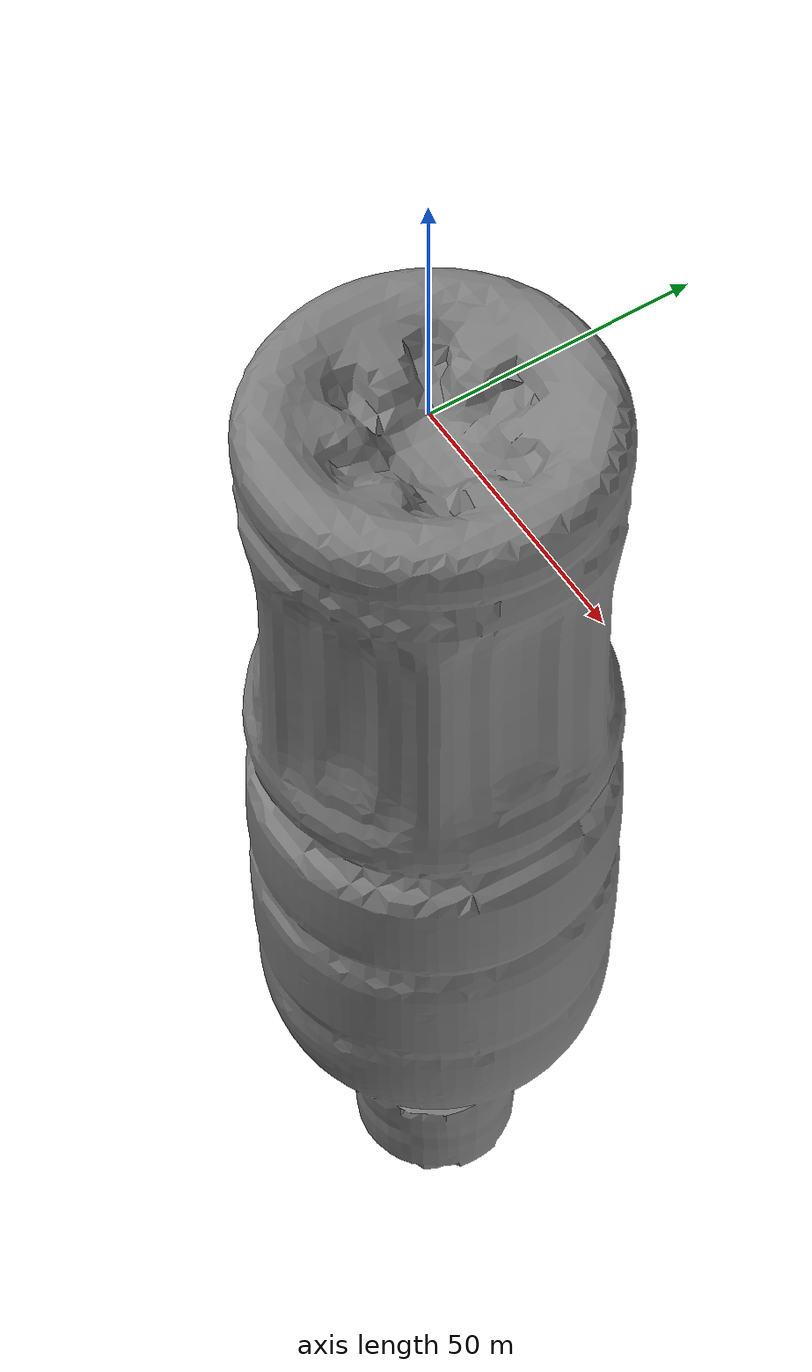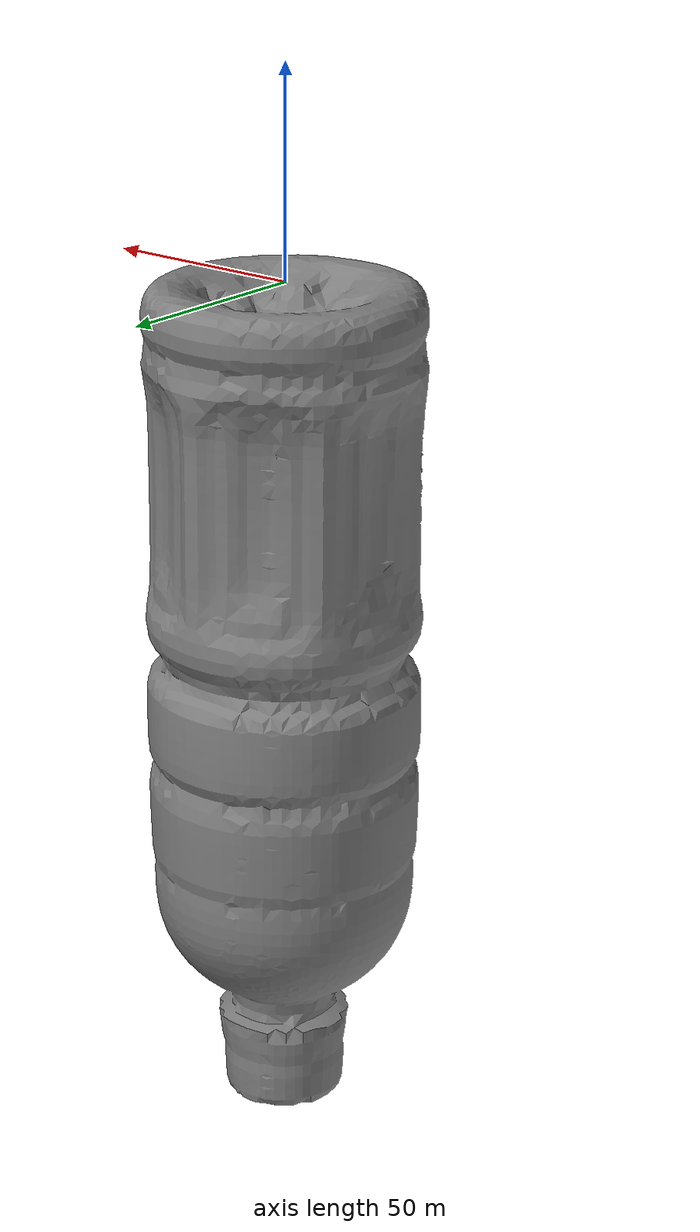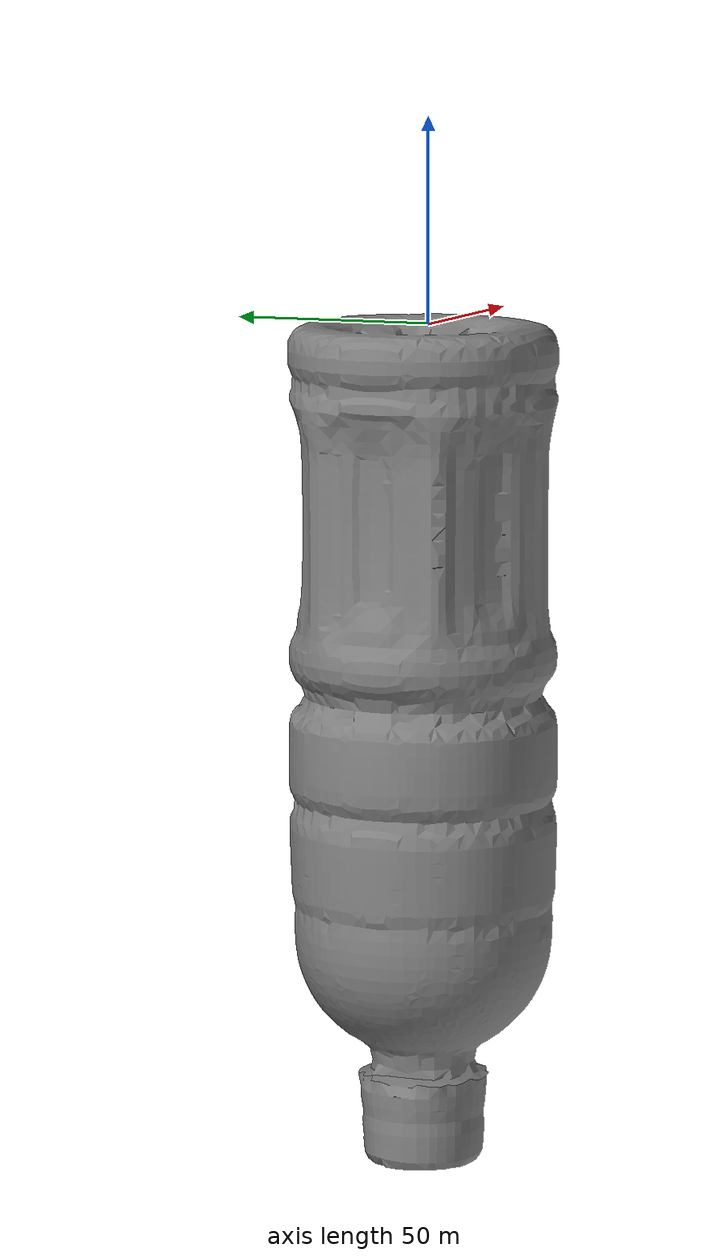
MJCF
<mujoco model="electrolyteWater_simple">
  <default>
    <default class="visual">
      <geom group="2" type="mesh" contype="0" conaffinity="0"/>
    </default>
    <default class="collision">
      <geom group="3" type="mesh"/>
    </default>
  </default>
  <asset>
    <mesh file="electrolyteWater_simple.obj"/>
    <mesh file="electrolyteWater_simple_collision_0.obj"/>
    <mesh file="electrolyteWater_simple_collision_1.obj"/>
    <mesh file="electrolyteWater_simple_collision_2.obj"/>
    <mesh file="electrolyteWater_simple_collision_3.obj"/>
    <mesh file="electrolyteWater_simple_collision_4.obj"/>
    <mesh file="electrolyteWater_simple_collision_5.obj"/>
    <mesh file="electrolyteWater_simple_collision_6.obj"/>
    <mesh file="electrolyteWater_simple_collision_7.obj"/>
    <mesh file="electrolyteWater_simple_collision_8.obj"/>
    <mesh file="electrolyteWater_simple_collision_9.obj"/>
    <mesh file="electrolyteWater_simple_collision_10.obj"/>
    <mesh file="electrolyteWater_simple_collision_11.obj"/>
    <mesh file="electrolyteWater_simple_collision_12.obj"/>
    <mesh file="electrolyteWater_simple_collision_13.obj"/>
    <mesh file="electrolyteWater_simple_collision_14.obj"/>
    <mesh file="electrolyteWater_simple_collision_15.obj"/>
    <mesh file="electrolyteWater_simple_collision_16.obj"/>
    <mesh file="electrolyteWater_simple_collision_17.obj"/>
    <mesh file="electrolyteWater_simple_collision_18.obj"/>
    <mesh file="electrolyteWater_simple_collision_19.obj"/>
    <mesh file="electrolyteWater_simple_collision_20.obj"/>
    <mesh file="electrolyteWater_simple_collision_21.obj"/>
    <mesh file="electrolyteWater_simple_collision_22.obj"/>
    <mesh file="electrolyteWater_simple_collision_23.obj"/>
    <mesh file="electrolyteWater_simple_collision_24.obj"/>
    <mesh file="electrolyteWater_simple_collision_25.obj"/>
    <mesh file="electrolyteWater_simple_collision_26.obj"/>
    <mesh file="electrolyteWater_simple_collision_27.obj"/>
    <mesh file="electrolyteWater_simple_collision_28.obj"/>
    <mesh file="electrolyteWater_simple_collision_29.obj"/>
    <mesh file="electrolyteWater_simple_collision_30.obj"/>
    <mesh file="electrolyteWater_simple_collision_31.obj"/>
    <mesh file="electrolyteWater_simple_collision_32.obj"/>
    <mesh file="electrolyteWater_simple_collision_33.obj"/>
    <mesh file="electrolyteWater_simple_collision_34.obj"/>
    <mesh file="electrolyteWater_simple_collision_35.obj"/>
    <mesh file="electrolyteWater_simple_collision_36.obj"/>
    <mesh file="electrolyteWater_simple_collision_37.obj"/>
    <mesh file="electrolyteWater_simple_collision_38.obj"/>
    <mesh file="electrolyteWater_simple_collision_39.obj"/>
    <mesh file="electrolyteWater_simple_collision_40.obj"/>
    <mesh file="electrolyteWater_simple_collision_41.obj"/>
    <mesh file="electrolyteWater_simple_collision_42.obj"/>
    <mesh file="electrolyteWater_simple_collision_43.obj"/>
    <mesh file="electrolyteWater_simple_collision_44.obj"/>
    <mesh file="electrolyteWater_simple_collision_45.obj"/>
    <mesh file="electrolyteWater_simple_collision_46.obj"/>
    <mesh file="electrolyteWater_simple_collision_47.obj"/>
    <mesh file="electrolyteWater_simple_collision_48.obj"/>
    <mesh file="electrolyteWater_simple_collision_49.obj"/>
    <mesh file="electrolyteWater_simple_collision_50.obj"/>
    <mesh file="electrolyteWater_simple_collision_51.obj"/>
    <mesh file="electrolyteWater_simple_collision_52.obj"/>
    <mesh file="electrolyteWater_simple_collision_53.obj"/>
    <mesh file="electrolyteWater_simple_collision_54.obj"/>
    <mesh file="electrolyteWater_simple_collision_55.obj"/>
    <mesh file="electrolyteWater_simple_collision_56.obj"/>
    <mesh file="electrolyteWater_simple_collision_57.obj"/>
    <mesh file="electrolyteWater_simple_collision_58.obj"/>
    <mesh file="electrolyteWater_simple_collision_59.obj"/>
    <mesh file="electrolyteWater_simple_collision_60.obj"/>
    <mesh file="electrolyteWater_simple_collision_61.obj"/>
    <mesh file="electrolyteWater_simple_collision_62.obj"/>
    <mesh file="electrolyteWater_simple_collision_63.obj"/>
    <mesh file="electrolyteWater_simple_collision_64.obj"/>
    <mesh file="electrolyteWater_simple_collision_65.obj"/>
    <mesh file="electrolyteWater_simple_collision_66.obj"/>
    <mesh file="electrolyteWater_simple_collision_67.obj"/>
    <mesh file="electrolyteWater_simple_collision_68.obj"/>
    <mesh file="electrolyteWater_simple_collision_69.obj"/>
    <mesh file="electrolyteWater_simple_collision_70.obj"/>
    <mesh file="electrolyteWater_simple_collision_71.obj"/>
    <mesh file="electrolyteWater_simple_collision_72.obj"/>
    <mesh file="electrolyteWater_simple_collision_73.obj"/>
    <mesh file="electrolyteWater_simple_collision_74.obj"/>
    <mesh file="electrolyteWater_simple_collision_75.obj"/>
    <mesh file="electrolyteWater_simple_collision_76.obj"/>
    <mesh file="electrolyteWater_simple_collision_77.obj"/>
    <mesh file="electrolyteWater_simple_collision_78.obj"/>
    <mesh file="electrolyteWater_simple_collision_79.obj"/>
    <mesh file="electrolyteWater_simple_collision_80.obj"/>
    <mesh file="electrolyteWater_simple_collision_81.obj"/>
    <mesh file="electrolyteWater_simple_collision_82.obj"/>
    <mesh file="electrolyteWater_simple_collision_83.obj"/>
    <mesh file="electrolyteWater_simple_collision_84.obj"/>
    <mesh file="electrolyteWater_simple_collision_85.obj"/>
    <mesh file="electrolyteWater_simple_collision_86.obj"/>
    <mesh file="electrolyteWater_simple_collision_87.obj"/>
    <mesh file="electrolyteWater_simple_collision_88.obj"/>
    <mesh file="electrolyteWater_simple_collision_89.obj"/>
    <mesh file="electrolyteWater_simple_collision_90.obj"/>
    <mesh file="electrolyteWater_simple_collision_91.obj"/>
    <mesh file="electrolyteWater_simple_collision_92.obj"/>
    <mesh file="electrolyteWater_simple_collision_93.obj"/>
    <mesh file="electrolyteWater_simple_collision_94.obj"/>
    <mesh file="electrolyteWater_simple_collision_95.obj"/>
    <mesh file="electrolyteWater_simple_collision_96.obj"/>
    <mesh file="electrolyteWater_simple_collision_97.obj"/>
    <mesh file="electrolyteWater_simple_collision_98.obj"/>
    <mesh file="electrolyteWater_simple_collision_99.obj"/>
    <mesh file="electrolyteWater_simple_collision_100.obj"/>
    <mesh file="electrolyteWater_simple_collision_101.obj"/>
    <mesh file="electrolyteWater_simple_collision_102.obj"/>
    <mesh file="electrolyteWater_simple_collision_103.obj"/>
    <mesh file="electrolyteWater_simple_collision_104.obj"/>
    <mesh file="electrolyteWater_simple_collision_105.obj"/>
    <mesh file="electrolyteWater_simple_collision_106.obj"/>
    <mesh file="electrolyteWater_simple_collision_107.obj"/>
    <mesh file="electrolyteWater_simple_collision_108.obj"/>
    <mesh file="electrolyteWater_simple_collision_109.obj"/>
    <mesh file="electrolyteWater_simple_collision_110.obj"/>
    <mesh file="electrolyteWater_simple_collision_111.obj"/>
    <mesh file="electrolyteWater_simple_collision_112.obj"/>
    <mesh file="electrolyteWater_simple_collision_113.obj"/>
    <mesh file="electrolyteWater_simple_collision_114.obj"/>
    <mesh file="electrolyteWater_simple_collision_115.obj"/>
    <mesh file="electrolyteWater_simple_collision_116.obj"/>
    <mesh file="electrolyteWater_simple_collision_117.obj"/>
    <mesh file="electrolyteWater_simple_collision_118.obj"/>
    <mesh file="electrolyteWater_simple_collision_119.obj"/>
    <mesh file="electrolyteWater_simple_collision_120.obj"/>
    <mesh file="electrolyteWater_simple_collision_121.obj"/>
    <mesh file="electrolyteWater_simple_collision_122.obj"/>
    <mesh file="electrolyteWater_simple_collision_123.obj"/>
    <mesh file="electrolyteWater_simple_collision_124.obj"/>
    <mesh file="electrolyteWater_simple_collision_125.obj"/>
    <mesh file="electrolyteWater_simple_collision_126.obj"/>
    <mesh file="electrolyteWater_simple_collision_127.obj"/>
    <mesh file="electrolyteWater_simple_collision_128.obj"/>
    <mesh file="electrolyteWater_simple_collision_129.obj"/>
    <mesh file="electrolyteWater_simple_collision_130.obj"/>
    <mesh file="electrolyteWater_simple_collision_131.obj"/>
    <mesh file="electrolyteWater_simple_collision_132.obj"/>
    <mesh file="electrolyteWater_simple_collision_133.obj"/>
    <mesh file="electrolyteWater_simple_collision_134.obj"/>
    <mesh file="electrolyteWater_simple_collision_135.obj"/>
    <mesh file="electrolyteWater_simple_collision_136.obj"/>
    <mesh file="electrolyteWater_simple_collision_137.obj"/>
    <mesh file="electrolyteWater_simple_collision_138.obj"/>
    <mesh file="electrolyteWater_simple_collision_139.obj"/>
    <mesh file="electrolyteWater_simple_collision_140.obj"/>
    <mesh file="electrolyteWater_simple_collision_141.obj"/>
    <mesh file="electrolyteWater_simple_collision_142.obj"/>
    <mesh file="electrolyteWater_simple_collision_143.obj"/>
    <mesh file="electrolyteWater_simple_collision_144.obj"/>
    <mesh file="electrolyteWater_simple_collision_145.obj"/>
    <mesh file="electrolyteWater_simple_collision_146.obj"/>
    <mesh file="electrolyteWater_simple_collision_147.obj"/>
    <mesh file="electrolyteWater_simple_collision_148.obj"/>
    <mesh file="electrolyteWater_simple_collision_149.obj"/>
    <mesh file="electrolyteWater_simple_collision_150.obj"/>
    <mesh file="electrolyteWater_simple_collision_151.obj"/>
    <mesh file="electrolyteWater_simple_collision_152.obj"/>
    <mesh file="electrolyteWater_simple_collision_153.obj"/>
    <mesh file="electrolyteWater_simple_collision_154.obj"/>
    <mesh file="electrolyteWater_simple_collision_155.obj"/>
    <mesh file="electrolyteWater_simple_collision_156.obj"/>
    <mesh file="electrolyteWater_simple_collision_157.obj"/>
    <mesh file="electrolyteWater_simple_collision_158.obj"/>
    <mesh file="electrolyteWater_simple_collision_159.obj"/>
    <mesh file="electrolyteWater_simple_collision_160.obj"/>
    <mesh file="electrolyteWater_simple_collision_161.obj"/>
    <mesh file="electrolyteWater_simple_collision_162.obj"/>
    <mesh file="electrolyteWater_simple_collision_163.obj"/>
    <mesh file="electrolyteWater_simple_collision_164.obj"/>
    <mesh file="electrolyteWater_simple_collision_165.obj"/>
    <mesh file="electrolyteWater_simple_collision_166.obj"/>
    <mesh file="electrolyteWater_simple_collision_167.obj"/>
    <mesh file="electrolyteWater_simple_collision_168.obj"/>
    <mesh file="electrolyteWater_simple_collision_169.obj"/>
    <mesh file="electrolyteWater_simple_collision_170.obj"/>
    <mesh file="electrolyteWater_simple_collision_171.obj"/>
    <mesh file="electrolyteWater_simple_collision_172.obj"/>
    <mesh file="electrolyteWater_simple_collision_173.obj"/>
    <mesh file="electrolyteWater_simple_collision_174.obj"/>
    <mesh file="electrolyteWater_simple_collision_175.obj"/>
    <mesh file="electrolyteWater_simple_collision_176.obj"/>
    <mesh file="electrolyteWater_simple_collision_177.obj"/>
    <mesh file="electrolyteWater_simple_collision_178.obj"/>
    <mesh file="electrolyteWater_simple_collision_179.obj"/>
    <mesh file="electrolyteWater_simple_collision_180.obj"/>
    <mesh file="electrolyteWater_simple_collision_181.obj"/>
    <mesh file="electrolyteWater_simple_collision_182.obj"/>
    <mesh file="electrolyteWater_simple_collision_183.obj"/>
    <mesh file="electrolyteWater_simple_collision_184.obj"/>
    <mesh file="electrolyteWater_simple_collision_185.obj"/>
    <mesh file="electrolyteWater_simple_collision_186.obj"/>
    <mesh file="electrolyteWater_simple_collision_187.obj"/>
    <mesh file="electrolyteWater_simple_collision_188.obj"/>
    <mesh file="electrolyteWater_simple_collision_189.obj"/>
    <mesh file="electrolyteWater_simple_collision_190.obj"/>
    <mesh file="electrolyteWater_simple_collision_191.obj"/>
    <mesh file="electrolyteWater_simple_collision_192.obj"/>
    <mesh file="electrolyteWater_simple_collision_193.obj"/>
    <mesh file="electrolyteWater_simple_collision_194.obj"/>
    <mesh file="electrolyteWater_simple_collision_195.obj"/>
    <mesh file="electrolyteWater_simple_collision_196.obj"/>
    <mesh file="electrolyteWater_simple_collision_197.obj"/>
    <mesh file="electrolyteWater_simple_collision_198.obj"/>
    <mesh file="electrolyteWater_simple_collision_199.obj"/>
  </asset>
  <worldbody>
    <body name="electrolyteWater_simple">
      <geom mesh="electrolyteWater_simple" class="visual"/>
      <geom mesh="electrolyteWater_simple_collision_0" rgba="0.5461134181409263 0.005094437537162766 0.6962053087676381 1" class="collision"/>
      <geom mesh="electrolyteWater_simple_collision_1" rgba="0.9111514688207846 0.2940151662398499 0.1210464158542589 1" class="collision"/>
      <geom mesh="electrolyteWater_simple_collision_2" rgba="0.07210777135686885 0.5460440313327026 0.4162402253605916 1" class="collision"/>
      <geom mesh="electrolyteWater_simple_collision_3" rgba="0.16350408486450496 0.5045316754894293 0.28352074494155044 1" class="collision"/>
      <geom mesh="electrolyteWater_simple_collision_4" rgba="0.3011938892332332 0.0868714756313147 0.4154568814870302 1" class="collision"/>
      <geom mesh="electrolyteWater_simple_collision_5" rgba="0.680146847261629 0.47968945693409426 0.11280761473750545 1" class="collision"/>
      <geom mesh="electrolyteWater_simple_collision_6" rgba="0.06391725280414584 0.6338263002872896 0.35078150651937645 1" class="collision"/>
      <geom mesh="electrolyteWater_simple_collision_7" rgba="0.1386553293290962 0.38602093871845355 0.9592196665215285 1" class="collision"/>
      <geom mesh="electrolyteWater_simple_collision_8" rgba="0.8749987892075933 0.8547895898270119 0.4147862401567012 1" class="collision"/>
      <geom mesh="electrolyteWater_simple_collision_9" rgba="0.07435351834970383 0.7788572205966567 0.7035073139100909 1" class="collision"/>
      <geom mesh="electrolyteWater_simple_collision_10" rgba="0.6465527309260524 0.8645650496576339 0.398469768061147 1" class="collision"/>
      <geom mesh="electrolyteWater_simple_collision_11" rgba="0.024319844450988226 0.6246532188088362 0.7008697722424119 1" class="collision"/>
      <geom mesh="electrolyteWater_simple_collision_12" rgba="0.8177556402759065 0.45730145665300104 0.6713154621063048 1" class="collision"/>
      <geom mesh="electrolyteWater_simple_collision_13" rgba="0.6606361714322072 0.7517470659068454 0.3047909861273006 1" class="collision"/>
      <geom mesh="electrolyteWater_simple_collision_14" rgba="0.5236871885347858 0.9804864284280536 0.6388596888632413 1" class="collision"/>
      <geom mesh="electrolyteWater_simple_collision_15" rgba="0.2901042942278502 0.5328246952262675 0.8289562334727446 1" class="collision"/>
      <geom mesh="electrolyteWater_simple_collision_16" rgba="0.44717444148706953 0.6359884168109586 0.2842612208122237 1" class="collision"/>
      <geom mesh="electrolyteWater_simple_collision_17" rgba="0.6622357946298186 0.45010097275554695 0.14728096450130346 1" class="collision"/>
      <geom mesh="electrolyteWater_simple_collision_18" rgba="0.37208371022643005 0.32908624520438956 0.8960624910959186 1" class="collision"/>
      <geom mesh="electrolyteWater_simple_collision_19" rgba="0.60701827294774 0.7252555186850251 0.15420402258548072 1" class="collision"/>
      <geom mesh="electrolyteWater_simple_collision_20" rgba="0.4776168723734032 0.8915835641680866 0.4863235649343609 1" class="collision"/>
      <geom mesh="electrolyteWater_simple_collision_21" rgba="0.678750253210317 0.6012341300387603 0.23397261566377836 1" class="collision"/>
      <geom mesh="electrolyteWater_simple_collision_22" rgba="0.7932623019325103 0.8301799602009143 0.07172772421928997 1" class="collision"/>
      <geom mesh="electrolyteWater_simple_collision_23" rgba="0.2089381685053595 0.40721607341462507 0.5902437021263609 1" class="collision"/>
      <geom mesh="electrolyteWater_simple_collision_24" rgba="0.22612604685369964 0.20685920340585673 0.40197064085626855 1" class="collision"/>
      <geom mesh="electrolyteWater_simple_collision_25" rgba="0.766310528945579 0.6300534027539972 0.6866909594145668 1" class="collision"/>
      <geom mesh="electrolyteWater_simple_collision_26" rgba="0.3111446246318087 0.6764011557389978 0.9790475255571025 1" class="collision"/>
      <geom mesh="electrolyteWater_simple_collision_27" rgba="0.8296825997236963 0.9350722414007405 0.1363973455259676 1" class="collision"/>
      <geom mesh="electrolyteWater_simple_collision_28" rgba="0.08844554880434674 0.9200218715740434 0.8854217806920577 1" class="collision"/>
      <geom mesh="electrolyteWater_simple_collision_29" rgba="0.12006447330258518 0.964705738288836 0.07822745950169496 1" class="collision"/>
      <geom mesh="electrolyteWater_simple_collision_30" rgba="0.5645096761293819 0.2921694776870366 0.7049083222821131 1" class="collision"/>
      <geom mesh="electrolyteWater_simple_collision_31" rgba="0.6808666463033857 0.9242226935945452 0.9846665013116768 1" class="collision"/>
      <geom mesh="electrolyteWater_simple_collision_32" rgba="0.4960658230185059 0.06739224929253396 0.5567665283153541 1" class="collision"/>
      <geom mesh="electrolyteWater_simple_collision_33" rgba="0.6769822214268613 0.5650693018184499 0.6920624080636695 1" class="collision"/>
      <geom mesh="electrolyteWater_simple_collision_34" rgba="0.7934485992343125 0.12524603926251066 0.43308205574864744 1" class="collision"/>
      <geom mesh="electrolyteWater_simple_collision_35" rgba="0.37785769982131967 0.12917523490860816 0.32174227312596815 1" class="collision"/>
      <geom mesh="electrolyteWater_simple_collision_36" rgba="0.6040213995767564 0.47982109764780667 0.2885745189378043 1" class="collision"/>
      <geom mesh="electrolyteWater_simple_collision_37" rgba="0.22822255411182113 0.1193134057832459 0.178990102900079 1" class="collision"/>
      <geom mesh="electrolyteWater_simple_collision_38" rgba="0.8728053361791861 0.8968325687049407 0.16202436937649067 1" class="collision"/>
      <geom mesh="electrolyteWater_simple_collision_39" rgba="0.13384145587023644 0.7368064890428575 0.3005958910468022 1" class="collision"/>
      <geom mesh="electrolyteWater_simple_collision_40" rgba="0.2219842302930931 0.6683617571871898 0.253338516730059 1" class="collision"/>
      <geom mesh="electrolyteWater_simple_collision_41" rgba="0.24114857418709557 0.0823851627145672 0.41331682723819063 1" class="collision"/>
      <geom mesh="electrolyteWater_simple_collision_42" rgba="0.041523718531276343 0.5638059140020374 0.27294570555847797 1" class="collision"/>
      <geom mesh="electrolyteWater_simple_collision_43" rgba="0.4686338063319542 0.14807073503999735 0.0947768055710444 1" class="collision"/>
      <geom mesh="electrolyteWater_simple_collision_44" rgba="0.9257081394841602 0.8037336966214604 0.26068639019757434 1" class="collision"/>
      <geom mesh="electrolyteWater_simple_collision_45" rgba="0.8245105745813964 0.7304168996189996 0.5316821262013993 1" class="collision"/>
      <geom mesh="electrolyteWater_simple_collision_46" rgba="0.020331860133046775 0.3391621736665308 0.519316065942908 1" class="collision"/>
      <geom mesh="electrolyteWater_simple_collision_47" rgba="0.9064723533952191 0.7174797684723624 0.3221448621820947 1" class="collision"/>
      <geom mesh="electrolyteWater_simple_collision_48" rgba="0.23291228927795116 0.9302563771221664 0.5587607254451337 1" class="collision"/>
      <geom mesh="electrolyteWater_simple_collision_49" rgba="0.832614190866098 0.39801854473301923 0.1778639945715641 1" class="collision"/>
      <geom mesh="electrolyteWater_simple_collision_50" rgba="0.29158291397680314 0.4323864498716913 0.555388181577699 1" class="collision"/>
      <geom mesh="electrolyteWater_simple_collision_51" rgba="0.045999495327829876 0.5218411593669757 0.49511212508272406 1" class="collision"/>
      <geom mesh="electrolyteWater_simple_collision_52" rgba="0.5568441638388575 0.4891129712786707 0.35103037413350324 1" class="collision"/>
      <geom mesh="electrolyteWater_simple_collision_53" rgba="0.5610607599179563 0.6767347352729218 0.1918806958963457 1" class="collision"/>
      <geom mesh="electrolyteWater_simple_collision_54" rgba="0.6615291361951035 0.8122282537676903 0.36452439359469846 1" class="collision"/>
      <geom mesh="electrolyteWater_simple_collision_55" rgba="0.2461571469098196 0.24114392550206654 0.6963532838094267 1" class="collision"/>
      <geom mesh="electrolyteWater_simple_collision_56" rgba="0.21542734347647963 0.27752291062183077 0.04866179915644553 1" class="collision"/>
      <geom mesh="electrolyteWater_simple_collision_57" rgba="0.9581529589744947 0.6138429300501989 0.7333423662268209 1" class="collision"/>
      <geom mesh="electrolyteWater_simple_collision_58" rgba="0.8092909314257581 0.007624212036051681 0.5239751624176283 1" class="collision"/>
      <geom mesh="electrolyteWater_simple_collision_59" rgba="0.8508270260780035 0.2744721182657427 0.9804872888149244 1" class="collision"/>
      <geom mesh="electrolyteWater_simple_collision_60" rgba="0.12053828773199582 0.20659537711120257 0.8255901958548278 1" class="collision"/>
      <geom mesh="electrolyteWater_simple_collision_61" rgba="0.04522004616974662 0.8334316598244919 0.08652810891381257 1" class="collision"/>
      <geom mesh="electrolyteWater_simple_collision_62" rgba="0.609129476562033 0.23277195928034444 0.01191173178871463 1" class="collision"/>
      <geom mesh="electrolyteWater_simple_collision_63" rgba="0.3240088063321379 0.1750598845405359 0.6230177256253059 1" class="collision"/>
      <geom mesh="electrolyteWater_simple_collision_64" rgba="0.6771147496986717 0.5963698350863025 0.6455895716373725 1" class="collision"/>
      <geom mesh="electrolyteWater_simple_collision_65" rgba="0.4823886626084607 0.7453110056802628 0.39221546841522215 1" class="collision"/>
      <geom mesh="electrolyteWater_simple_collision_66" rgba="0.9299968925204247 0.6971213796997633 0.40385641162375696 1" class="collision"/>
      <geom mesh="electrolyteWater_simple_collision_67" rgba="0.4990827129416352 0.7047015428198276 0.19703558955400668 1" class="collision"/>
      <geom mesh="electrolyteWater_simple_collision_68" rgba="0.9726455876020776 0.10646147541304074 0.6333946827875208 1" class="collision"/>
      <geom mesh="electrolyteWater_simple_collision_69" rgba="0.8524188285015644 0.834599349591473 0.9945912787622724 1" class="collision"/>
      <geom mesh="electrolyteWater_simple_collision_70" rgba="0.8270327643056095 0.4845644800232223 0.5404180481315584 1" class="collision"/>
      <geom mesh="electrolyteWater_simple_collision_71" rgba="0.021324977852694715 0.8315408775815687 0.3331640994094677 1" class="collision"/>
      <geom mesh="electrolyteWater_simple_collision_72" rgba="0.8990996786282432 0.13690731986060833 0.5996549590209557 1" class="collision"/>
      <geom mesh="electrolyteWater_simple_collision_73" rgba="0.4782651558729979 0.44280798473524596 0.09697689372401674 1" class="collision"/>
      <geom mesh="electrolyteWater_simple_collision_74" rgba="0.20425895552100715 0.14997511019482812 0.7263244198606296 1" class="collision"/>
      <geom mesh="electrolyteWater_simple_collision_75" rgba="0.04273481023269432 0.6536520158374169 0.14026883261631562 1" class="collision"/>
      <geom mesh="electrolyteWater_simple_collision_76" rgba="0.035657596789884116 0.22708379362897013 0.34531778026302007 1" class="collision"/>
      <geom mesh="electrolyteWater_simple_collision_77" rgba="0.13284854009136338 0.9563978644603734 0.5532617636918621 1" class="collision"/>
      <geom mesh="electrolyteWater_simple_collision_78" rgba="0.2424442655014547 0.41721596120550974 0.42308558626339743 1" class="collision"/>
      <geom mesh="electrolyteWater_simple_collision_79" rgba="0.04636477696054864 0.03424059018406378 0.893549543058705 1" class="collision"/>
      <geom mesh="electrolyteWater_simple_collision_80" rgba="0.5894713207686403 0.19013277815370677 0.8865813811713337 1" class="collision"/>
      <geom mesh="electrolyteWater_simple_collision_81" rgba="0.49174769602978363 0.9078323879877264 0.692443721088268 1" class="collision"/>
      <geom mesh="electrolyteWater_simple_collision_82" rgba="0.49055133255611527 0.9765958941404782 0.8039977164119548 1" class="collision"/>
      <geom mesh="electrolyteWater_simple_collision_83" rgba="0.30103165733062354 0.569768199265921 0.7579085455947533 1" class="collision"/>
      <geom mesh="electrolyteWater_simple_collision_84" rgba="0.49333780594764065 0.04134129377975726 0.6249618032262251 1" class="collision"/>
      <geom mesh="electrolyteWater_simple_collision_85" rgba="0.32891745736925804 0.6899670862432561 0.5395572346034285 1" class="collision"/>
      <geom mesh="electrolyteWater_simple_collision_86" rgba="0.6665202863878326 0.4689754721781284 0.28905405219217994 1" class="collision"/>
      <geom mesh="electrolyteWater_simple_collision_87" rgba="0.287698899921462 0.8570893815806173 0.38263404730900563 1" class="collision"/>
      <geom mesh="electrolyteWater_simple_collision_88" rgba="0.7089256193435217 0.2398878390095931 0.10152548502301761 1" class="collision"/>
      <geom mesh="electrolyteWater_simple_collision_89" rgba="0.57331711726355 0.6459965434802268 0.26227929192671795 1" class="collision"/>
      <geom mesh="electrolyteWater_simple_collision_90" rgba="0.6864729992281686 0.2626582611936892 0.537658873833916 1" class="collision"/>
      <geom mesh="electrolyteWater_simple_collision_91" rgba="0.6386559189632363 0.7294583509180408 0.20337118597155102 1" class="collision"/>
      <geom mesh="electrolyteWater_simple_collision_92" rgba="0.6082748959524582 0.6008150902078825 0.8087671932843996 1" class="collision"/>
      <geom mesh="electrolyteWater_simple_collision_93" rgba="0.9162863524288477 0.5812487198096499 0.8488855282877992 1" class="collision"/>
      <geom mesh="electrolyteWater_simple_collision_94" rgba="0.4352547670327179 0.7618078974835112 0.9789714151314352 1" class="collision"/>
      <geom mesh="electrolyteWater_simple_collision_95" rgba="0.0819714276976733 0.8586274533967212 0.8428198460211912 1" class="collision"/>
      <geom mesh="electrolyteWater_simple_collision_96" rgba="0.32708367368196944 0.4592703659561551 0.6105260448255061 1" class="collision"/>
      <geom mesh="electrolyteWater_simple_collision_97" rgba="0.11246567206693081 0.391471516737671 0.13855361712318348 1" class="collision"/>
      <geom mesh="electrolyteWater_simple_collision_98" rgba="0.6724728860552238 0.6522524252431804 0.5967744873238974 1" class="collision"/>
      <geom mesh="electrolyteWater_simple_collision_99" rgba="0.33242173498958294 0.1416787265083791 0.6132857377740847 1" class="collision"/>
      <geom mesh="electrolyteWater_simple_collision_100" rgba="0.4332822468912696 0.758471840853684 0.6433885915901395 1" class="collision"/>
      <geom mesh="electrolyteWater_simple_collision_101" rgba="0.27157003476367403 0.04853503998760322 0.3695363675366484 1" class="collision"/>
      <geom mesh="electrolyteWater_simple_collision_102" rgba="0.8102373317796805 0.9721357531863639 0.8778379954359784 1" class="collision"/>
      <geom mesh="electrolyteWater_simple_collision_103" rgba="0.3037278571981219 0.1969447895621651 0.8603671134677908 1" class="collision"/>
      <geom mesh="electrolyteWater_simple_collision_104" rgba="0.8941629879390589 0.8192101361866366 0.5130003296719822 1" class="collision"/>
      <geom mesh="electrolyteWater_simple_collision_105" rgba="0.8001898333592752 0.9912003018808365 0.7519724224618798 1" class="collision"/>
      <geom mesh="electrolyteWater_simple_collision_106" rgba="0.7531342285663876 0.8304084983360072 0.9027888392021263 1" class="collision"/>
      <geom mesh="electrolyteWater_simple_collision_107" rgba="0.325033156884165 0.6449709092792993 0.944400299413997 1" class="collision"/>
      <geom mesh="electrolyteWater_simple_collision_108" rgba="0.14893348720409583 0.5945126649281611 0.9412563108049885 1" class="collision"/>
      <geom mesh="electrolyteWater_simple_collision_109" rgba="0.7984635254431278 0.4901184308383282 0.7746359283716351 1" class="collision"/>
      <geom mesh="electrolyteWater_simple_collision_110" rgba="0.4723484085406513 0.14750130553156415 0.6394452380661895 1" class="collision"/>
      <geom mesh="electrolyteWater_simple_collision_111" rgba="0.4536208920659184 0.999751246938781 0.15119673261567734 1" class="collision"/>
      <geom mesh="electrolyteWater_simple_collision_112" rgba="0.5603936942315194 0.015345409813096844 0.15092023395489906 1" class="collision"/>
      <geom mesh="electrolyteWater_simple_collision_113" rgba="0.7828701170411652 0.0994264769516674 0.4518355616038904 1" class="collision"/>
      <geom mesh="electrolyteWater_simple_collision_114" rgba="0.8286946155492999 0.012030534178794405 0.278922112056038 1" class="collision"/>
      <geom mesh="electrolyteWater_simple_collision_115" rgba="0.1405289382579542 0.034897684536511764 0.17955747970377212 1" class="collision"/>
      <geom mesh="electrolyteWater_simple_collision_116" rgba="0.8076466648406805 0.8459969872767751 0.33205835923553895 1" class="collision"/>
      <geom mesh="electrolyteWater_simple_collision_117" rgba="0.33649671218208643 0.22412946706667103 0.4395065595383155 1" class="collision"/>
      <geom mesh="electrolyteWater_simple_collision_118" rgba="0.2264638765741256 0.13717060103021117 0.3278866690429917 1" class="collision"/>
      <geom mesh="electrolyteWater_simple_collision_119" rgba="0.3313160028572635 0.6434080632312956 0.9422144053177042 1" class="collision"/>
      <geom mesh="electrolyteWater_simple_collision_120" rgba="0.2000417948441673 0.009118712750464497 0.2800852234545764 1" class="collision"/>
      <geom mesh="electrolyteWater_simple_collision_121" rgba="0.8973685614342932 0.47706714385663695 0.43363554593232034 1" class="collision"/>
      <geom mesh="electrolyteWater_simple_collision_122" rgba="0.7141680178150125 0.584667632106891 0.8472455930003735 1" class="collision"/>
      <geom mesh="electrolyteWater_simple_collision_123" rgba="0.3841894694970238 0.8746482481253591 0.6607726627040723 1" class="collision"/>
      <geom mesh="electrolyteWater_simple_collision_124" rgba="0.16399876357113663 0.8578181072487836 0.002283460366218182 1" class="collision"/>
      <geom mesh="electrolyteWater_simple_collision_125" rgba="0.17153719263753686 0.15943991291009296 0.10266346425174044 1" class="collision"/>
      <geom mesh="electrolyteWater_simple_collision_126" rgba="0.36133831855675147 0.9107944858609888 0.6882589462543512 1" class="collision"/>
      <geom mesh="electrolyteWater_simple_collision_127" rgba="0.14541442867577103 0.9909599382387942 0.9929914602967823 1" class="collision"/>
      <geom mesh="electrolyteWater_simple_collision_128" rgba="0.6689703488108187 0.2586226003202968 0.6239592626602242 1" class="collision"/>
      <geom mesh="electrolyteWater_simple_collision_129" rgba="0.9607877466711783 0.4513264370501665 0.06874097402694634 1" class="collision"/>
      <geom mesh="electrolyteWater_simple_collision_130" rgba="0.5744416533748135 0.7207232042616802 0.608794281119452 1" class="collision"/>
      <geom mesh="electrolyteWater_simple_collision_131" rgba="0.857631567858943 0.30184278346251514 0.6873028444410345 1" class="collision"/>
      <geom mesh="electrolyteWater_simple_collision_132" rgba="0.5723436935695732 0.5535749409307861 0.19339751905060287 1" class="collision"/>
      <geom mesh="electrolyteWater_simple_collision_133" rgba="0.5621150116358834 0.4597900180901793 0.9269887338942742 1" class="collision"/>
      <geom mesh="electrolyteWater_simple_collision_134" rgba="0.7139316732348712 0.0879302655406442 0.2426887365138184 1" class="collision"/>
      <geom mesh="electrolyteWater_simple_collision_135" rgba="0.41005954022406643 0.7574537702056536 0.7587330392093414 1" class="collision"/>
      <geom mesh="electrolyteWater_simple_collision_136" rgba="0.39438860134982767 0.5847727896974068 0.948397548030759 1" class="collision"/>
      <geom mesh="electrolyteWater_simple_collision_137" rgba="0.10582454159626642 0.9661270758418584 0.9305969761250077 1" class="collision"/>
      <geom mesh="electrolyteWater_simple_collision_138" rgba="0.646279352274374 0.8391560014551709 0.9883559932207946 1" class="collision"/>
      <geom mesh="electrolyteWater_simple_collision_139" rgba="0.2920782064609482 0.9333288002762041 0.47875487063966227 1" class="collision"/>
      <geom mesh="electrolyteWater_simple_collision_140" rgba="0.3453026285468629 0.7227410953658441 0.49982060210332513 1" class="collision"/>
      <geom mesh="electrolyteWater_simple_collision_141" rgba="0.25236242439780077 0.03491012311982944 0.7136223303707269 1" class="collision"/>
      <geom mesh="electrolyteWater_simple_collision_142" rgba="0.912227553089154 0.679561150021115 0.6904767870895558 1" class="collision"/>
      <geom mesh="electrolyteWater_simple_collision_143" rgba="0.4983490643505555 0.026241028522254184 0.5302196238653912 1" class="collision"/>
      <geom mesh="electrolyteWater_simple_collision_144" rgba="0.7245868980666162 0.273692258401838 0.7777827361127782 1" class="collision"/>
      <geom mesh="electrolyteWater_simple_collision_145" rgba="0.3188544715011783 0.8709523666486808 0.1926412240234192 1" class="collision"/>
      <geom mesh="electrolyteWater_simple_collision_146" rgba="0.09693157302691491 0.38548086842466023 0.6824861125207491 1" class="collision"/>
      <geom mesh="electrolyteWater_simple_collision_147" rgba="0.5344466631378141 0.17630644839161835 0.4583873686663814 1" class="collision"/>
      <geom mesh="electrolyteWater_simple_collision_148" rgba="0.9437771993580019 0.921679936559827 0.6461326927820862 1" class="collision"/>
      <geom mesh="electrolyteWater_simple_collision_149" rgba="0.9555468385963 0.09768329174498291 0.029221924209022587 1" class="collision"/>
      <geom mesh="electrolyteWater_simple_collision_150" rgba="0.942473916531514 0.8782703430731058 0.8949669172963682 1" class="collision"/>
      <geom mesh="electrolyteWater_simple_collision_151" rgba="0.3531722872116365 0.29318377650053973 0.44614799021403573 1" class="collision"/>
      <geom mesh="electrolyteWater_simple_collision_152" rgba="0.9138816363102167 0.5271510949085134 0.5439081406415005 1" class="collision"/>
      <geom mesh="electrolyteWater_simple_collision_153" rgba="0.8356109811908708 0.1519347755389574 0.44232938788067677 1" class="collision"/>
      <geom mesh="electrolyteWater_simple_collision_154" rgba="0.45731715385561333 0.2991809315821863 0.8664373610452355 1" class="collision"/>
      <geom mesh="electrolyteWater_simple_collision_155" rgba="0.4546696210406931 0.4167723444947675 0.549458242586374 1" class="collision"/>
      <geom mesh="electrolyteWater_simple_collision_156" rgba="0.8760643045049864 0.48684041279980483 0.866007679169479 1" class="collision"/>
      <geom mesh="electrolyteWater_simple_collision_157" rgba="0.9588467938395827 0.9619651054754398 0.02316045360925234 1" class="collision"/>
      <geom mesh="electrolyteWater_simple_collision_158" rgba="0.5411129383924217 0.12467857282188755 0.8107747771985309 1" class="collision"/>
      <geom mesh="electrolyteWater_simple_collision_159" rgba="0.152623193417889 0.33137160243527763 0.3790306299825573 1" class="collision"/>
      <geom mesh="electrolyteWater_simple_collision_160" rgba="0.6978709751449776 0.5482398859812057 0.1350549054210154 1" class="collision"/>
      <geom mesh="electrolyteWater_simple_collision_161" rgba="0.6154892857694828 0.9731005738458266 0.544482580030899 1" class="collision"/>
      <geom mesh="electrolyteWater_simple_collision_162" rgba="0.4820016422609865 0.12662181836601205 0.975782020886536 1" class="collision"/>
      <geom mesh="electrolyteWater_simple_collision_163" rgba="0.4274438900079556 0.35345063824889145 0.8745017448532936 1" class="collision"/>
      <geom mesh="electrolyteWater_simple_collision_164" rgba="0.09588086749413627 0.07851957804392817 0.21793790118354006 1" class="collision"/>
      <geom mesh="electrolyteWater_simple_collision_165" rgba="0.3856799886564094 0.06643533092579601 0.06181427004836981 1" class="collision"/>
      <geom mesh="electrolyteWater_simple_collision_166" rgba="0.33303646404815535 0.4227689764549024 0.6811522627116011 1" class="collision"/>
      <geom mesh="electrolyteWater_simple_collision_167" rgba="0.3753748166519302 0.015550009177251356 0.7013185294694593 1" class="collision"/>
      <geom mesh="electrolyteWater_simple_collision_168" rgba="0.3091581051879858 0.44834406569354757 0.6465379753661421 1" class="collision"/>
      <geom mesh="electrolyteWater_simple_collision_169" rgba="0.25490089322613296 0.03295028075799533 0.18972466963173495 1" class="collision"/>
      <geom mesh="electrolyteWater_simple_collision_170" rgba="0.834068759526093 0.5151965549256793 0.49917988631518995 1" class="collision"/>
      <geom mesh="electrolyteWater_simple_collision_171" rgba="0.917667545267284 0.6202687268552884 0.8061493981352813 1" class="collision"/>
      <geom mesh="electrolyteWater_simple_collision_172" rgba="0.4790943912826615 0.5122862974903227 0.4950230827226374 1" class="collision"/>
      <geom mesh="electrolyteWater_simple_collision_173" rgba="0.1687698899280894 0.29034614500735545 0.28063016811247254 1" class="collision"/>
      <geom mesh="electrolyteWater_simple_collision_174" rgba="0.18786710838401244 0.9821696216065086 0.11308906113659456 1" class="collision"/>
      <geom mesh="electrolyteWater_simple_collision_175" rgba="0.03486770456714383 0.42219713485439203 0.5293130411269009 1" class="collision"/>
      <geom mesh="electrolyteWater_simple_collision_176" rgba="0.15726183894065837 0.20864284737202 0.40471448590245596 1" class="collision"/>
      <geom mesh="electrolyteWater_simple_collision_177" rgba="0.5905744248417288 0.11913578616710951 0.2316382729258708 1" class="collision"/>
      <geom mesh="electrolyteWater_simple_collision_178" rgba="0.22044266745244268 0.9912839410306179 0.18288161552947324 1" class="collision"/>
      <geom mesh="electrolyteWater_simple_collision_179" rgba="0.662137883398509 0.49493969566943463 0.5175716144652184 1" class="collision"/>
      <geom mesh="electrolyteWater_simple_collision_180" rgba="0.17482839469233846 0.8216968894188672 0.2601555195442631 1" class="collision"/>
      <geom mesh="electrolyteWater_simple_collision_181" rgba="0.4122982428300107 0.9934572382927933 0.40240619494920493 1" class="collision"/>
      <geom mesh="electrolyteWater_simple_collision_182" rgba="0.9058544733308216 0.22744245348895664 0.9545944677419945 1" class="collision"/>
      <geom mesh="electrolyteWater_simple_collision_183" rgba="0.41510066524780675 0.9875713593726442 0.007164122094935443 1" class="collision"/>
      <geom mesh="electrolyteWater_simple_collision_184" rgba="0.8882586180550713 0.9625976187756726 0.6317660094565513 1" class="collision"/>
      <geom mesh="electrolyteWater_simple_collision_185" rgba="0.2434710018915759 0.45895113493968365 0.882080687206082 1" class="collision"/>
      <geom mesh="electrolyteWater_simple_collision_186" rgba="0.19413731027633319 0.6622586830188308 0.7588060943192284 1" class="collision"/>
      <geom mesh="electrolyteWater_simple_collision_187" rgba="0.9064900720950413 0.5182784219162224 0.11896077779792613 1" class="collision"/>
      <geom mesh="electrolyteWater_simple_collision_188" rgba="0.3942634062478566 0.34670397615550497 0.007205824705083241 1" class="collision"/>
      <geom mesh="electrolyteWater_simple_collision_189" rgba="0.756036813890681 0.6162313076072485 0.7171969003382676 1" class="collision"/>
      <geom mesh="electrolyteWater_simple_collision_190" rgba="0.7408419888436077 0.9311820909645111 0.08724634441013268 1" class="collision"/>
      <geom mesh="electrolyteWater_simple_collision_191" rgba="0.9798243832569327 0.7071434785543104 0.3171546931156315 1" class="collision"/>
      <geom mesh="electrolyteWater_simple_collision_192" rgba="0.4013945346931419 0.13942976546742358 0.4521913413154717 1" class="collision"/>
      <geom mesh="electrolyteWater_simple_collision_193" rgba="0.7226393687345212 0.6160249370486797 0.9073881809144285 1" class="collision"/>
      <geom mesh="electrolyteWater_simple_collision_194" rgba="0.6934495377559714 0.6852083578243 0.734391915046364 1" class="collision"/>
      <geom mesh="electrolyteWater_simple_collision_195" rgba="0.4904806142237297 0.07169092647931552 0.517574007455782 1" class="collision"/>
      <geom mesh="electrolyteWater_simple_collision_196" rgba="0.30089727348089135 0.9641975522698115 0.9695165622857086 1" class="collision"/>
      <geom mesh="electrolyteWater_simple_collision_197" rgba="0.5939802022485731 0.12512918644333915 0.3851948612529976 1" class="collision"/>
      <geom mesh="electrolyteWater_simple_collision_198" rgba="0.8151715594114121 0.48932803464789554 0.3072758136691176 1" class="collision"/>
      <geom mesh="electrolyteWater_simple_collision_199" rgba="0.7916203239086166 0.21259652196865364 0.4314821142741284 1" class="collision"/>
    </body>
  </worldbody>
</mujoco>
